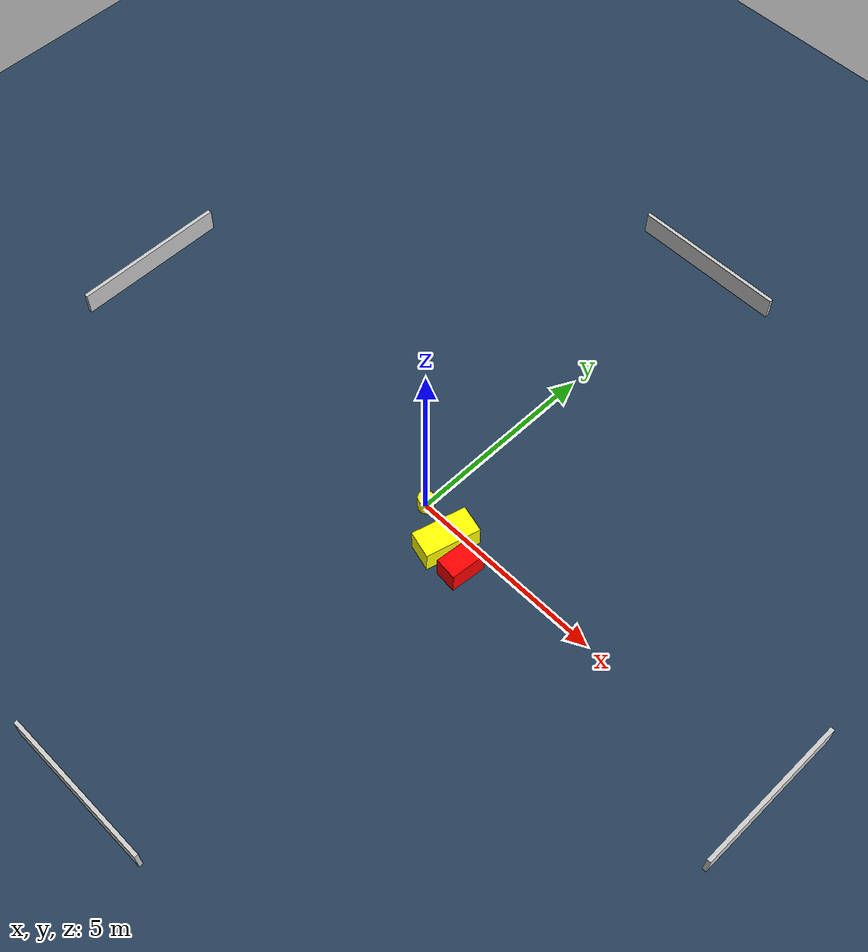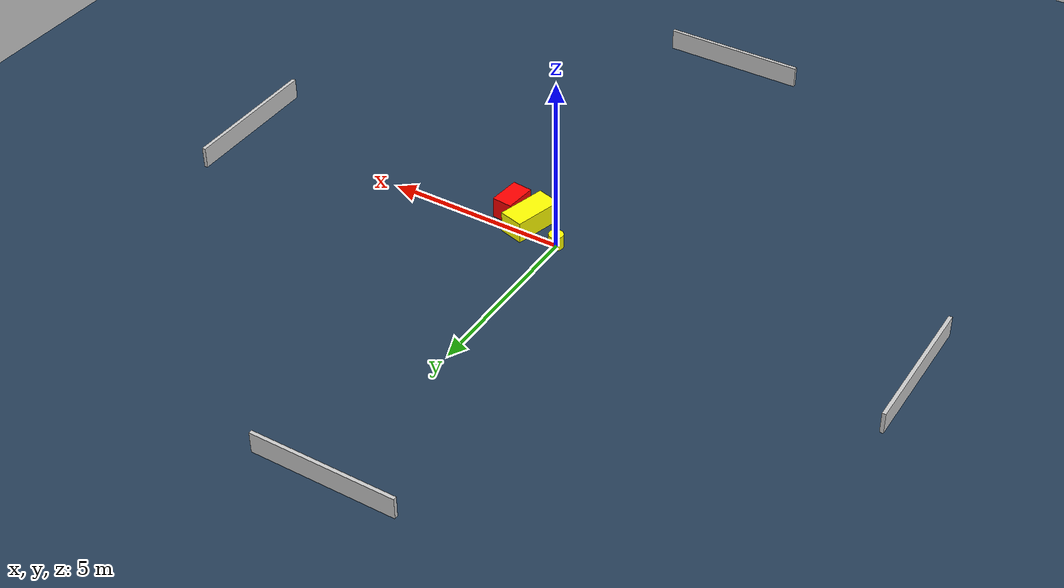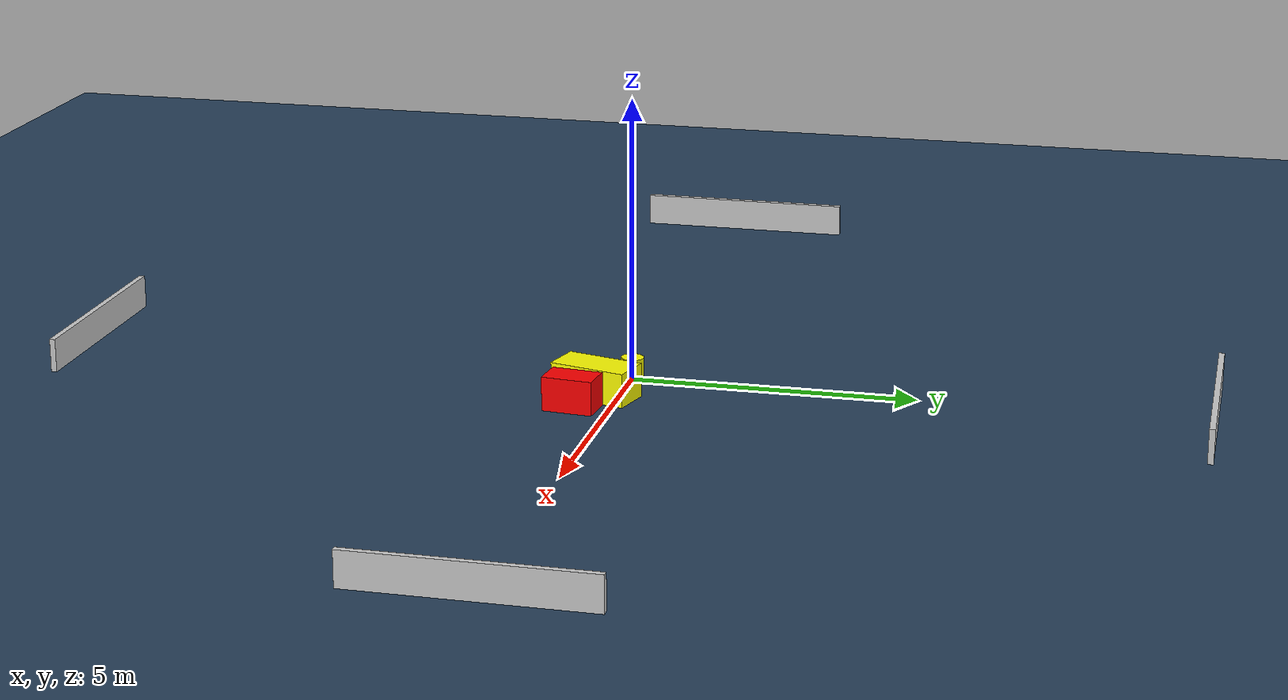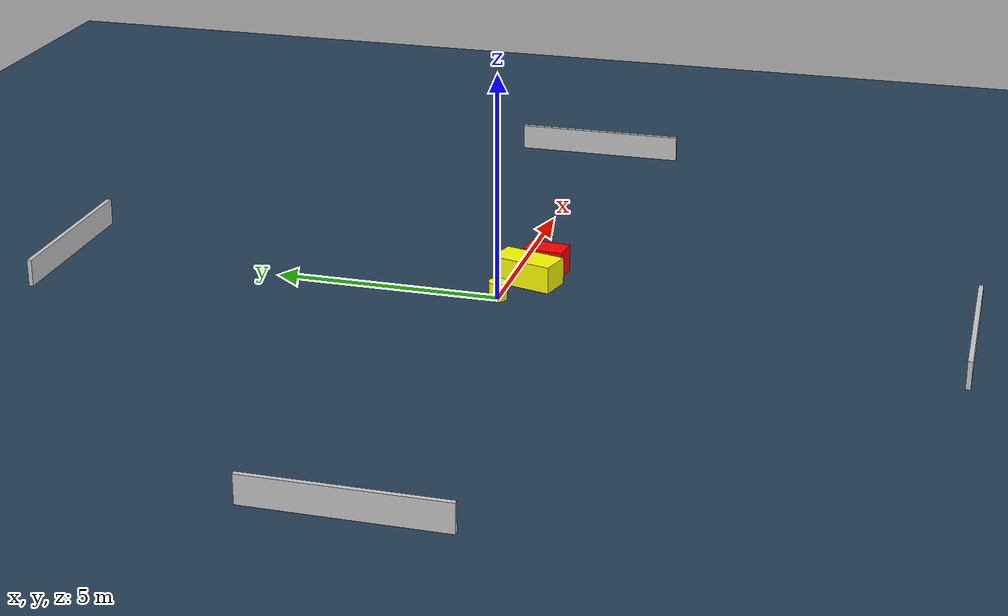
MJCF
<?xml version="1.0" ?>
<mujoco model="generated_environment">
  <option timestep="0.01" integrator="RK4" cone="elliptic"/>
  <default>
    <geom density="1"/>
  </default>
  <asset>
    <texture builtin="gradient" height="3072" name="skybox" rgb1="0.3 0.5 0.7" rgb2="0 0 0" type="skybox" width="512"/>
    <texture builtin="checker" height="300" name="groundplane" rgb1="0.2 0.3 0.4" rgb2="0.1 0.2 0.3" type="2d" width="300"/>
    <material name="groundplane" reflectance="0.2" texrepeat="5 5" texture="groundplane"/>
  </asset>
  <worldbody>
    <light dir="0 0 -1" directional="true" pos="0 0 1.5"/>
    <geom condim="3" friction="0.5 0.005 0.001" material="groundplane" name="floor" pos="0 0 0" size="0 0 0.05" type="plane"/>
    <body name="walls">
      <geom name="wall_1" condim="4" pos="-10.0 0.0 0.3" rgba="0.800000011920929 0.800000011920929 0.800000011920929 1.0" size="0.05 2.0 0.3" type="box"/>
      <geom name="wall_2" condim="4" pos="10.0 0.0 0.3" rgba="0.800000011920929 0.800000011920929 0.800000011920929 1.0" size="0.05 2.0 0.3" type="box"/>
      <geom name="wall_3" condim="4" pos="0.0 -10.0 0.3" rgba="0.800000011920929 0.800000011920929 0.800000011920929 1.0" size="2.0 0.05 0.3" type="box"/>
      <geom name="wall_4" condim="4" pos="0.0 10.0 0.3" rgba="0.800000011920929 0.800000011920929 0.800000011920929 1.0" size="2.0 0.05 0.3" type="box"/>
    </body>
    <body name="robot">
      <joint name="joint_x" type="slide" pos="0 0 0" axis="1 0 0"/>
      <joint name="joint_y" type="slide" pos="0 0 0" axis="0 1 0"/>
      <geom name="robot" type="cylinder" pos="0.0 0.0 0.2" size="0.2 0.2 0.0" mass="5.0" friction="1.0 0.005 0.0001" condim="4" rgba="1.0 1.0 0.0 1.0"/>
    </body>
    <body name="obstacle_1_movable">
      <geom name="obstacle_1_movable" condim="4" pos="1.0357352963038504 -0.394949987563667 0.3" euler="0 0 255.0009636673723" friction="0.0 0.005 0.001" rgba="1.0 1.0 0.0 1.0" size="0.6937686039264204 0.3469801368424428 0.3" type="box" mass="0.1"/>
      <joint type="free"/>
    </body>
    <body name="obstacle_2_static">
      <geom name="obstacle_2_static" condim="4" pos="1.7449095187472912 -0.638883038392002 0.3" euler="0 0 174.38142182956707" friction="0.0 0.005 0.001" rgba="1.0 0.0 0.0 1.0" size="0.2827742138089776 0.44618023510007043 0.3" type="box"/>
    </body>
  </worldbody>
  <actuator>
    <motor name="actuator_x" joint="joint_x" gear="1" ctrlrange="-1 1"/>
    <motor name="actuator_y" joint="joint_y" gear="1" ctrlrange="-1 1"/>
  </actuator>
</mujoco>
